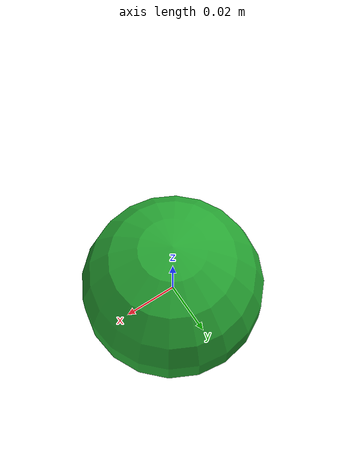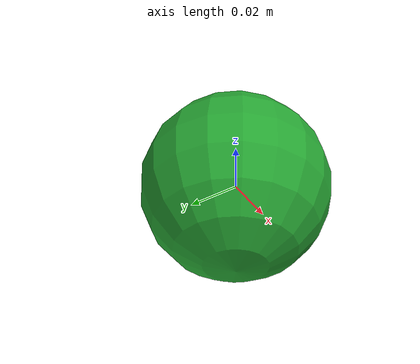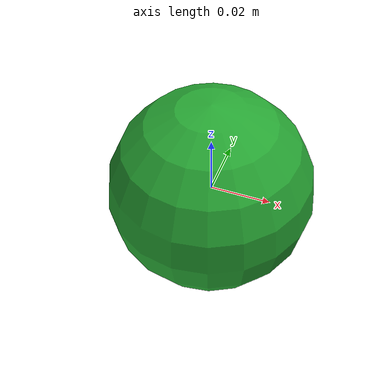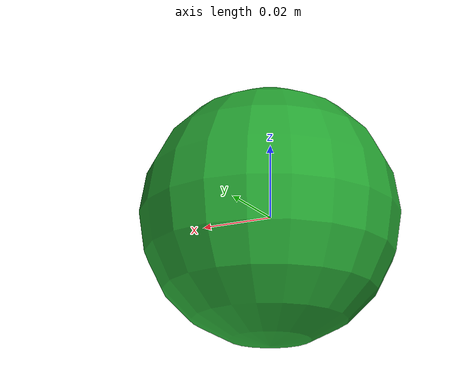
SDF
<sdf version="1.6">
  <model name='Target'>
      <pose>0 0 0 0 0 0</pose>
          <link name='Target'>
            <inertial>
              <mass>0.057</mass>
            </inertial>
            <collision name='collision'>
              <geometry>
                <sphere>
                  <radius>.034</radius>
                </sphere>
              </geometry>
            </collision>
            <visual name='visual'>
              <geometry>
                <sphere>
                  <radius>.034</radius>
                </sphere>
              </geometry>
              <material>
                <script>
                  <uri>file://media/materials/scripts/gazebo.material</uri>
                  <name>Gazebo/Green</name>
                </script>
              </material>
            </visual>
          </link>
      <plugin name='target' filename='NRPGazeboGrpcModelControllerPlugin.so'/>
    </model>
</sdf>
